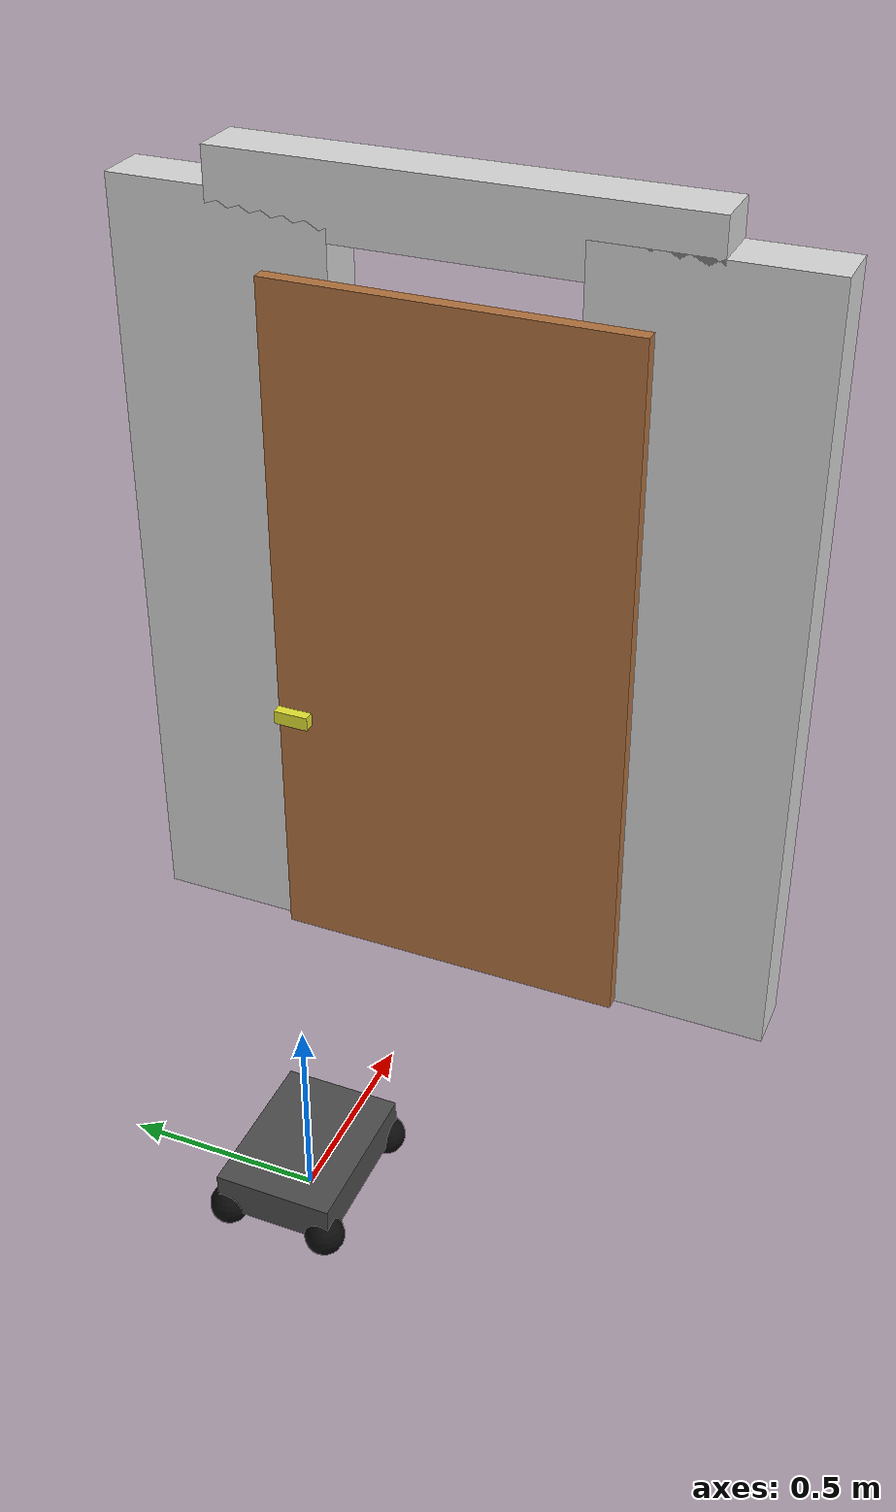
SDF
<sdf version="1.6">
 <world name="assembly_mobile_manipulation_door">
  <model name="mobile_base">
   <static>false</static>
   <pose>0 0 0.1 0 0 0</pose>
   <link name="base_link">
    <inertial><mass>8.0</mass><inertia><ixx>0.08</ixx><iyy>0.08</iyy><izz>0.12</izz></inertia></inertial>
    <collision name="collision">
     <geometry><box><size>0.4 0.3 0.1</size></box></geometry>
     <proximity_properties><mu_dynamic>0.8</mu_dynamic><mu_static>0.8</mu_static></proximity_properties>
    </collision>
    <visual name="visual">
     <geometry><box><size>0.4 0.3 0.1</size></box></geometry>
     <material><diffuse>0.3 0.3 0.3 1</diffuse></material>
    </visual>
    <visual name="omni_front_left">
     <pose>0.18 0.13 -0.05 0 0 0</pose>
     <geometry><sphere><radius>0.05</radius></sphere></geometry>
     <material><diffuse>0.05 0.05 0.05 1</diffuse></material>
    </visual>
    <visual name="omni_front_right">
     <pose>0.18 -0.13 -0.05 0 0 0</pose>
     <geometry><sphere><radius>0.05</radius></sphere></geometry>
     <material><diffuse>0.05 0.05 0.05 1</diffuse></material>
    </visual>
    <visual name="omni_rear_left">
     <pose>-0.18 0.13 -0.05 0 0 0</pose>
     <geometry><sphere><radius>0.05</radius></sphere></geometry>
     <material><diffuse>0.05 0.05 0.05 1</diffuse></material>
    </visual>
    <visual name="omni_rear_right">
     <pose>-0.18 -0.13 -0.05 0 0 0</pose>
     <geometry><sphere><radius>0.05</radius></sphere></geometry>
     <material><diffuse>0.05 0.05 0.05 1</diffuse></material>
    </visual>
   </link>
   <link name="x_link"/>
   <link name="y_link"/>
   <joint name="base_slide_x" type="prismatic">
    <parent>world</parent>
    <child>x_link</child>
    <axis><xyz>1 0 0</xyz><dynamics><damping>1.0</damping></dynamics></axis>
   </joint>
   <joint name="base_slide_y" type="prismatic">
    <parent>x_link</parent>
    <child>y_link</child>
    <axis><xyz>0 1 0</xyz><dynamics><damping>1.0</damping></dynamics></axis>
   </joint>
   <joint name="base_yaw" type="revolute">
    <parent>y_link</parent>
    <child>base_link</child>
    <axis><xyz>0 0 1</xyz><dynamics><damping>0.5</damping></dynamics></axis>
   </joint>
  </model>
  <joint name="panda_to_mobile_base" type="fixed">
   <parent>mobile_base::base_link</parent>
   <child>panda::panda_link0</child>
  </joint>
  <model name="doorway">
   <static>false</static>
   <pose>1.0 0.0 0.02 0 0 0</pose>
   <link name="door_panel">
    <pose>-0.10 0 1.01 0 0 0</pose>
    <inertial><mass>25.0</mass><inertia><ixx>1.0</ixx><iyy>2.2</iyy><izz>2.2</izz></inertia></inertial>
    <collision name="door_collision">
     <geometry><box><size>0.04 1.0 2.0</size></box></geometry>
     <proximity_properties><mu_dynamic>0.6</mu_dynamic><mu_static>0.6</mu_static></proximity_properties>
    </collision>
    <visual name="door_visual">
     <geometry><box><size>0.04 1.0 2.0</size></box></geometry>
     <material><diffuse>0.7 0.45 0.25 1.0</diffuse></material>
    </visual>
    <visual name="handle_visual">
     <pose>-0.03 0.45 -0.26 0 0 0</pose>
     <geometry><box><size>0.04 0.10 0.04</size></box></geometry>
     <material><diffuse>0.9 0.9 0.2 1.0</diffuse></material>
    </visual>
    <collision name="handle_collision">
     <pose>-0.03 0.45 -0.26 0 0 0</pose>
     <geometry><box><size>0.04 0.10 0.04</size></box></geometry>
    </collision>
   </link>
   <link name="wall_left">
    <pose>0 -0.625 1.1 0 0 0</pose>
    <collision name="wall_collision_left"><geometry><box><size>0.15 0.60 2.2</size></box></geometry></collision>
    <visual name="wall_visual_left">
     <geometry><box><size>0.15 0.60 2.2</size></box></geometry>
     <material><diffuse>0.85 0.85 0.85 1</diffuse></material>
    </visual>
   </link>
   <link name="wall_right">
    <pose>0 0.625 1.1 0 0 0</pose>
    <collision name="wall_collision_right"><geometry><box><size>0.15 0.60 2.2</size></box></geometry></collision>
    <visual name="wall_visual_right">
     <geometry><box><size>0.15 0.60 2.2</size></box></geometry>
     <material><diffuse>0.85 0.85 0.85 1</diffuse></material>
    </visual>
   </link>
   <link name="wall_top">
    <pose>0 0 2.2 0 0 0</pose>
    <collision name="wall_collision_top"><geometry><box><size>0.15 1.30 0.20</size></box></geometry></collision>
    <visual name="wall_visual_top">
     <geometry><box><size>0.15 1.30 0.20</size></box></geometry>
     <material><diffuse>0.85 0.85 0.85 1</diffuse></material>
    </visual>
   </link>
   <joint name="door_hinge" type="revolute">
    <parent>wall_left</parent>
    <child>door_panel</child>
    <pose>-0.10 -0.625 1.01 0 0 0</pose>
    <axis>
     <xyz>0 0 1</xyz>
     <limit><lower>0</lower><upper>1.57</upper></limit>
     <dynamics><damping>3.0</damping></dynamics>
    </axis>
   </joint>
   <joint name="wall_left_fixed" type="fixed"><parent>world</parent><child>wall_left</child></joint>
   <joint name="wall_right_fixed" type="fixed"><parent>world</parent><child>wall_right</child></joint>
   <joint name="wall_top_fixed" type="fixed"><parent>world</parent><child>wall_top</child></joint>
  </model>
 </world>
</sdf>
